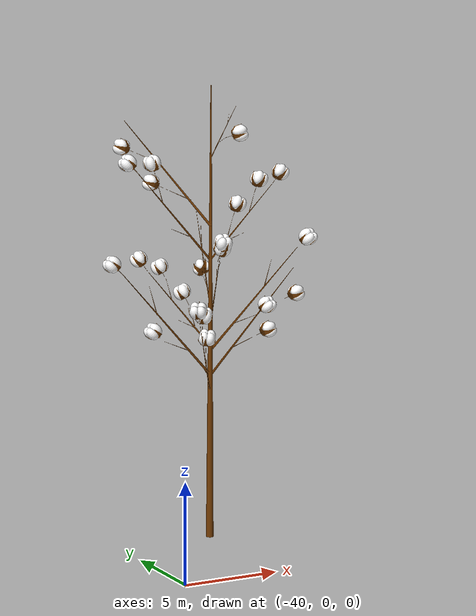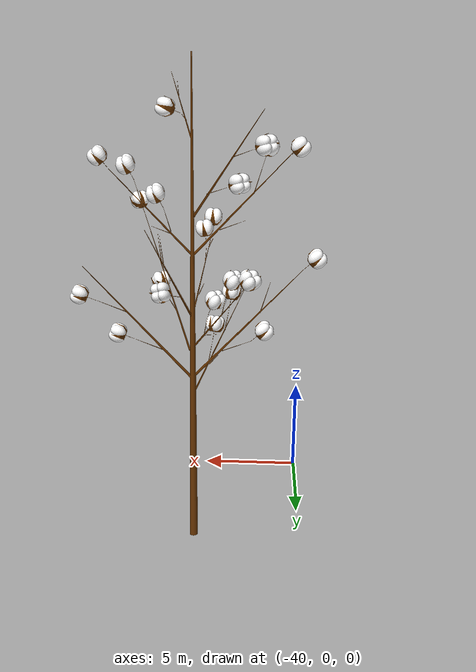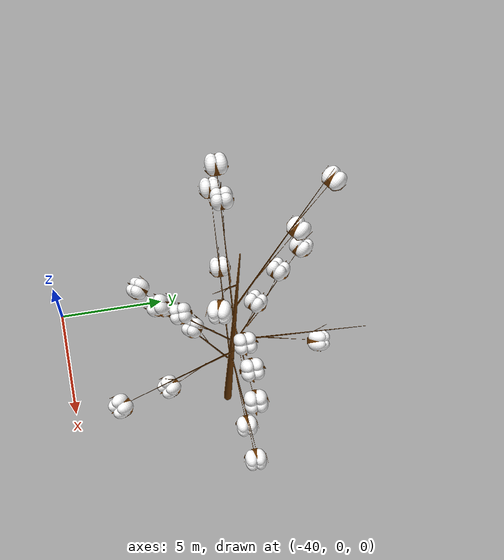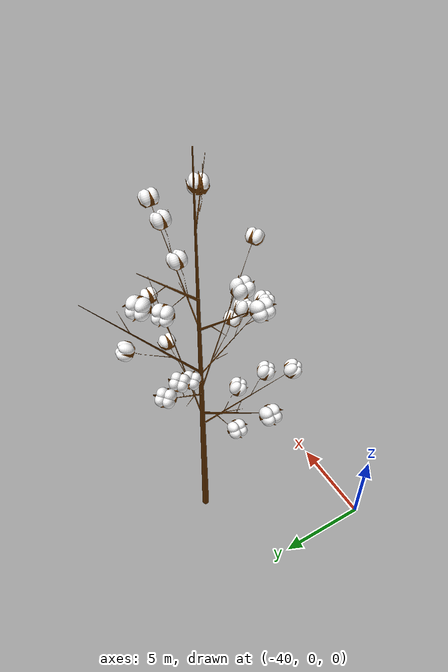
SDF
<?xml version="1.0" ?>
<sdf version="1.5">
  <model name="cotton">
    <link name="link">
      <collision name="collision">
        <geometry>
          <mesh>
            <scale>10 10 10</scale>
            <uri>model://cotton/meshes/cotton.dae</uri>
          </mesh>
        </geometry>
      </collision>
      <visual name="visual">
        <geometry>
          <mesh>
            <scale>10 10 10</scale>
            <uri>model://cotton/meshes/cotton.dae</uri>
          </mesh>
        </geometry>
      </visual>
    </link>
  </model>
</sdf>
